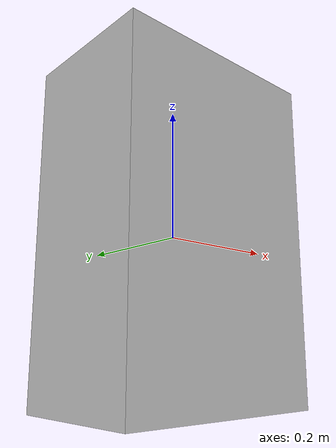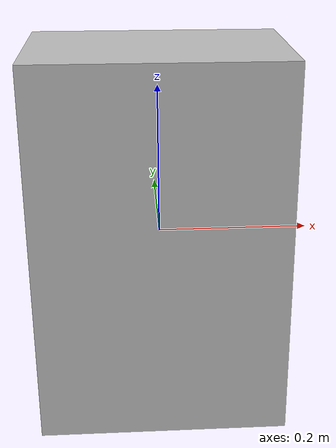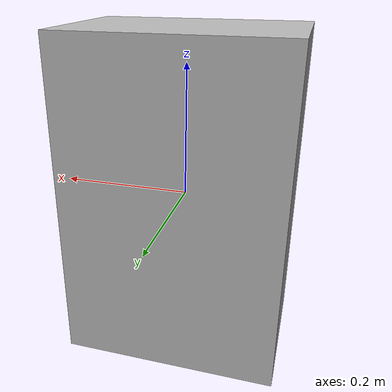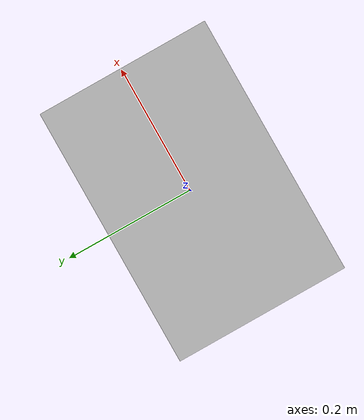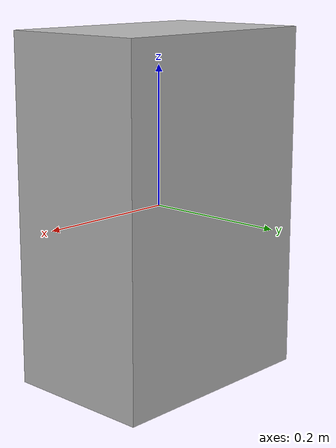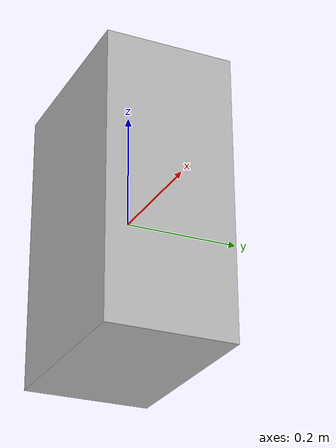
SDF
<?xml version='1.0'?>

<sdf version='1.5'>
   <model name="building">
      <static>true</static>
      <link name="link">
         <collision name='collision'>
            <geometry>
            <box>
               <size>0.33 0.22 0.5</size>
            </box>
            </geometry>
         </collision>
         <visual name='visual'>
            <cast_shadows>false</cast_shadows>
            <geometry>
            <box>
               <size>0.33 0.22 0.5</size>
            </box>
            </geometry>
         </visual>
      </link>
   </model>
</sdf>
